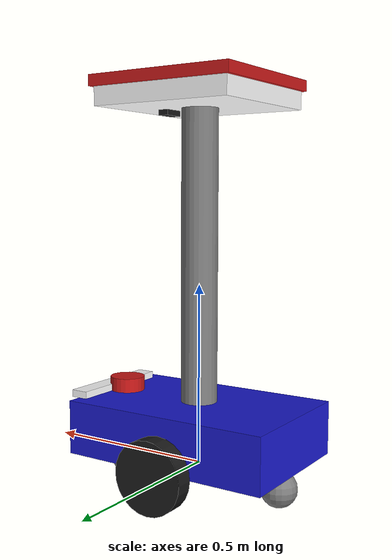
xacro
<?xml version="1.0"?>
<robot name="restaurant_robot" xmlns:xacro="http://www.ros.org/wiki/xacro">

  <!-- 引入其他檔案 -->
  <xacro:include filename="$(find restaurant_robot)/urdf/xacro/robot_properties.xacro" />
  <xacro:include filename="$(find restaurant_robot)/urdf/xacro/robot_base.xacro" />
  <xacro:include filename="$(find restaurant_robot)/urdf/xacro/robot_wheels.xacro" />
  <xacro:include filename="$(find restaurant_robot)/urdf/xacro/robot_tray.xacro" />
  <xacro:include filename="$(find restaurant_robot)/urdf/xacro/robot_sensors.xacro" />
  <xacro:include filename="$(find restaurant_robot)/urdf/xacro/robot.gazebo" />

  <!-- 基礎連結 -->
  <link name="base_footprint"/>

  <!-- 組裝機器人 -->
  <xacro:robot_base parent="base_footprint"/>
  <xacro:robot_wheels parent="base_link"/>
  <xacro:robot_tray parent="base_link"/>
  <xacro:robot_sensors parent="base_link"/>

</robot>

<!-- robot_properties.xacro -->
<robot xmlns:xacro="http://www.ros.org/wiki/xacro">

  <!-- 機器人尺寸 -->
  <xacro:property name="base_length" value="0.6"/>  <!-- 60cm 長 -->
  <xacro:property name="base_width" value="0.4"/>   <!-- 40cm 寬 -->
  <xacro:property name="base_height" value="0.15"/> <!-- 15cm 高 -->

  <!-- 輪子參數 -->
  <xacro:property name="wheel_radius" value="0.1"/>  <!-- 10cm 半徑 -->
  <xacro:property name="wheel_width" value="0.05"/>  <!-- 5cm 寬 -->
  <xacro:property name="wheel_separation" value="0.35"/> <!-- 輪子間距 -->

  <!-- 托盤參數 -->
  <xacro:property name="tray_height" value="0.8"/>   <!-- 托盤高度 80cm -->
  <xacro:property name="tray_size" value="0.4"/>     <!-- 托盤 40x40cm -->

  <!-- 材質定義 -->
  <material name="blue">
    <color rgba="0.1 0.1 0.8 1.0"/>
  </material>

  <material name="white">
    <color rgba="1.0 1.0 1.0 1.0"/>
  </material>

  <material name="grey">
    <color rgba="0.5 0.5 0.5 1.0"/>
  </material>

  <material name="black">
    <color rgba="0.1 0.1 0.1 1.0"/>
  </material>

  <material name="red">
    <color rgba="0.8 0.1 0.1 1.0"/>
  </material>

  <!-- 修正慣性矩陣計算巨集 -->
  <xacro:macro name="box_inertia" params="m w h d">
    <inertial>
      <origin xyz="0 0 0" rpy="0 0 0"/>
      <mass value="${m}"/>
      <inertia ixx="${m / 12.0 * (h*h + d*d)}" ixy="0.0" ixz="0.0"
               iyy="${m / 12.0 * (w*w + d*d)}" iyz="0.0"
               izz="${m / 12.0 * (w*w + h*h)}"/>
    </inertial>
  </xacro:macro>

  <xacro:macro name="cylinder_inertia" params="m r h">
    <inertial>
      <origin xyz="0 0 0" rpy="0 0 0"/>
      <mass value="${m}"/>
      <inertia ixx="${m / 12.0 * (3*r*r + h*h)}" ixy="0.0" ixz="0.0"
               iyy="${m / 12.0 * (3*r*r + h*h)}" iyz="0.0"
               izz="${m / 2.0 * r*r}"/>
    </inertial>
  </xacro:macro>

</robot>

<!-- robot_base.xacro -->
<robot xmlns:xacro="http://www.ros.org/wiki/xacro">

  <xacro:macro name="robot_base" params="parent">
    <!-- 底盤主體 -->
    <link name="base_link">
      <visual>
        <geometry>
          <box size="${base_length} ${base_width} ${base_height}"/>
        </geometry>
        <material name="blue"/>
      </visual>

      <collision>
        <geometry>
          <box size="${base_length} ${base_width} ${base_height}"/>
        </geometry>
      </collision>

      <xacro:box_inertia m="20" w="${base_length}" h="${base_width}" d="${base_height}"/>
    </link>

    <joint name="base_joint" type="fixed">
      <parent link="${parent}"/>
      <child link="base_link"/>
      <!-- 調整底盤高度，讓輪子正好接觸地面 -->
      <origin xyz="0 0 ${wheel_radius}" rpy="0 0 0"/>
    </joint>

    <!-- 裝飾性元素：前方指示燈 -->
    <link name="front_indicator">
      <visual>
        <geometry>
          <box size="0.05 ${base_width*0.8} 0.02"/>
        </geometry>
        <material name="white"/>
      </visual>
    </link>

    <joint name="front_indicator_joint" type="fixed">
      <parent link="base_link"/>
      <child link="front_indicator"/>
      <origin xyz="${base_length/2} 0 ${base_height/2 + 0.01}" rpy="0 0 0"/>
    </joint>

  </xacro:macro>

</robot>

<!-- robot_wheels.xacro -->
<robot xmlns:xacro="http://www.ros.org/wiki/xacro">

  <xacro:macro name="robot_wheels" params="parent">

    <!-- 左輪 -->
    <link name="left_wheel">
      <visual>
        <geometry>
          <cylinder radius="${wheel_radius}" length="${wheel_width}"/>
        </geometry>
        <material name="black"/>
        <origin xyz="0 0 0" rpy="${pi/2} 0 0"/>
      </visual>

      <collision>
        <geometry>
          <cylinder radius="${wheel_radius}" length="${wheel_width}"/>
        </geometry>
        <origin xyz="0 0 0" rpy="${pi/2} 0 0"/>
      </collision>

      <xacro:cylinder_inertia m="2" r="${wheel_radius}" h="${wheel_width}"/>
    </link>

    <joint name="left_wheel_joint" type="continuous">
      <parent link="${parent}"/>
      <child link="left_wheel"/>
      <!-- 將輪子移到底盤中間位置 -->
      <origin xyz="0 ${base_width/2 + wheel_width/2} ${-base_height/2}" rpy="0 0 0"/>
      <axis xyz="0 1 0"/>
      <limit velocity="5.0" effort="10.0"/>
    </joint>

    <!-- 右輪 -->
    <link name="right_wheel">
      <visual>
        <geometry>
          <cylinder radius="${wheel_radius}" length="${wheel_width}"/>
        </geometry>
        <material name="black"/>
        <origin xyz="0 0 0" rpy="${pi/2} 0 0"/>
      </visual>

      <collision>
        <geometry>
          <cylinder radius="${wheel_radius}" length="${wheel_width}"/>
        </geometry>
        <origin xyz="0 0 0" rpy="${pi/2} 0 0"/>
      </collision>

      <xacro:cylinder_inertia m="2" r="${wheel_radius}" h="${wheel_width}"/>
    </link>

    <joint name="right_wheel_joint" type="continuous">
      <parent link="${parent}"/>
      <child link="right_wheel"/>
      <!-- 將輪子移到底盤中間位置 -->
      <origin xyz="0 ${-base_width/2 - wheel_width/2} ${-base_height/2}" rpy="0 0 0"/>
      <axis xyz="0 1 0"/>
      <limit velocity="5.0" effort="10.0"/>
    </joint>

    <!-- 前支撐輪（萬向輪） -->
    <link name="front_caster_wheel">
      <visual>
        <geometry>
          <sphere radius="${wheel_radius/2}"/>
        </geometry>
        <material name="grey"/>
      </visual>

      <collision>
        <geometry>
          <sphere radius="${wheel_radius/2}"/>
        </geometry>
      </collision>

      <inertial>
        <mass value="0.5"/>
        <inertia ixx="0.001" ixy="0.0" ixz="0.0"
                 iyy="0.001" iyz="0.0"
                 izz="0.001"/>
      </inertial>
    </link>

    <joint name="front_caster_wheel_joint" type="fixed">
      <parent link="${parent}"/>
      <child link="front_caster_wheel"/>
      <!-- 前支撐輪位置 -->
      <origin xyz="${base_length/2 - 0.05} 0 ${-base_height/2 - wheel_radius/2}" rpy="0 0 0"/>
    </joint>

    <!-- 後支撐輪（萬向輪） -->
    <link name="rear_caster_wheel">
      <visual>
        <geometry>
          <sphere radius="${wheel_radius/2}"/>
        </geometry>
        <material name="grey"/>
      </visual>

      <collision>
        <geometry>
          <sphere radius="${wheel_radius/2}"/>
        </geometry>
      </collision>

      <inertial>
        <mass value="0.5"/>
        <inertia ixx="0.001" ixy="0.0" ixz="0.0"
                 iyy="0.001" iyz="0.0"
                 izz="0.001"/>
      </inertial>
    </link>

    <joint name="rear_caster_wheel_joint" type="fixed">
      <parent link="${parent}"/>
      <child link="rear_caster_wheel"/>
      <!-- 後支撐輪位置 -->
      <origin xyz="${-base_length/2 + 0.05} 0 ${-base_height/2 - wheel_radius/2}" rpy="0 0 0"/>
    </joint>

  </xacro:macro>

</robot>

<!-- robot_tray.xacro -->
<robot xmlns:xacro="http://www.ros.org/wiki/xacro">

  <xacro:macro name="robot_tray" params="parent">

    <!-- 支撐柱 -->
    <link name="tray_support">
      <visual>
        <geometry>
          <cylinder radius="0.05" length="${tray_height}"/>
        </geometry>
        <material name="grey"/>
      </visual>

      <collision>
        <geometry>
          <cylinder radius="0.05" length="${tray_height}"/>
        </geometry>
      </collision>

      <xacro:cylinder_inertia m="2" r="0.05" h="${tray_height}"/>
    </link>

    <joint name="tray_support_joint" type="fixed">
      <parent link="${parent}"/>
      <child link="tray_support"/>
      <origin xyz="0 0 ${base_height/2 + tray_height/2}" rpy="0 0 0"/>
    </joint>

    <!-- 托盤 -->
    <link name="tray">
      <visual>
        <geometry>
          <box size="${tray_size} ${tray_size} 0.05"/>
        </geometry>
        <material name="white"/>
      </visual>

      <collision>
        <geometry>
          <box size="${tray_size} ${tray_size} 0.05"/>
        </geometry>
      </collision>

      <xacro:box_inertia m="3" w="${tray_size}" h="${tray_size}" d="0.05"/>
    </link>

    <joint name="tray_joint" type="fixed">
      <parent link="tray_support"/>
      <child link="tray"/>
      <origin xyz="0 0 ${tray_height/2 + 0.025}" rpy="0 0 0"/>
    </joint>

    <!-- 托盤邊緣（防止物品滑落） -->
    <link name="tray_edge">
      <visual>
        <geometry>
          <box size="${tray_size + 0.02} ${tray_size + 0.02} 0.03"/>
        </geometry>
        <material name="red"/>
      </visual>
    </link>

    <joint name="tray_edge_joint" type="fixed">
      <parent link="tray"/>
      <child link="tray_edge"/>
      <origin xyz="0 0 0.04" rpy="0 0 0"/>
    </joint>

  </xacro:macro>

</robot>

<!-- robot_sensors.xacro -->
<robot xmlns:xacro="http://www.ros.org/wiki/xacro">

  <xacro:macro name="robot_sensors" params="parent">

    <!-- 雷射掃描器 -->
    <link name="laser_link">
      <visual>
        <geometry>
          <cylinder radius="0.05" length="0.04"/>
        </geometry>
        <material name="red"/>
      </visual>

      <collision>
        <geometry>
          <cylinder radius="0.05" length="0.04"/>
        </geometry>
      </collision>

      <xacro:cylinder_inertia m="0.1" r="0.05" h="0.04"/>
    </link>

    <joint name="laser_joint" type="fixed">
      <parent link="${parent}"/>
      <child link="laser_link"/>
      <origin xyz="${base_length/2 - 0.05} 0 ${base_height/2 + 0.02}" rpy="0 0 0"/>
    </joint>

    <!-- 相機（選擇性，用於桌號識別） -->
    <link name="camera_link">
      <visual>
        <geometry>
          <box size="0.03 0.06 0.03"/>
        </geometry>
        <material name="black"/>
      </visual>

      <collision>
        <geometry>
          <box size="0.03 0.06 0.03"/>
        </geometry>
      </collision>

      <xacro:box_inertia m="0.05" w="0.03" h="0.06" d="0.03"/>
    </link>

    <joint name="camera_joint" type="fixed">
      <parent link="tray_support"/>
      <child link="camera_link"/>
      <origin xyz="0.1 0 ${tray_height/2}" rpy="0 0 0"/>
    </joint>

  </xacro:macro>

</robot>
